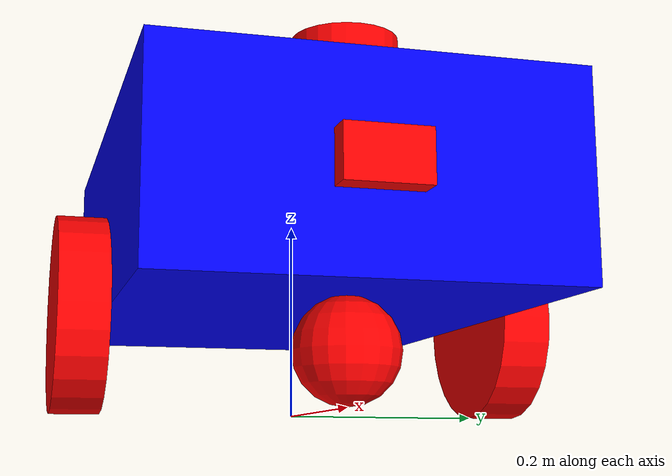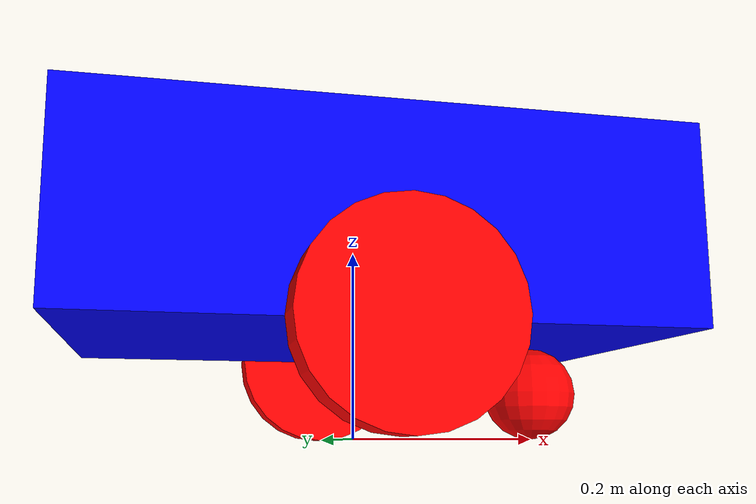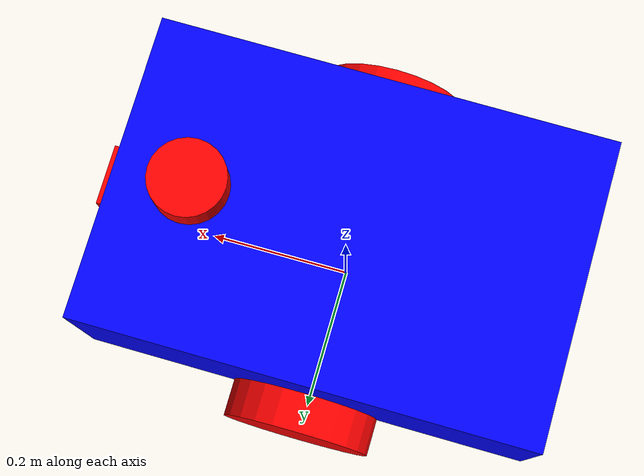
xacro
<?xml version="1.0"?>
<robot name="my_robot" xmlns:xacro="http://www.ros.org/wiki/xacro">

    <!-- ===============Properties========================= -->
    <xacro:property name="base_length" value = "0.6"/>
    <xacro:property name="base_width" value="0.4" />
    <xacro:property name="base_height" value="0.2" />
    <xacro:property name="wheel_radius" value="0.1" />
    <xacro:property name="wheel_height" value="0.05" />
    <xacro:property name="caster_wheel_radius" value="0.05" />

    <xacro:property name="lidar_radius" value="0.05"/>
    <xacro:property name="lidar_height" value="0.04"/>

    <xacro:property name="camera_length" value="0.05"/>
    <xacro:property name="camera_width" value="0.08"/>
    <xacro:property name="camera_height" value="0.05"/>

    <!-- ============Material Function=============== -->
    <material name="blue">
        <color rgba="0 0 1 1"/>
    </material>

    <material name="red">
        <color rgba="1 0 0 1" />
    </material>

    <!-- ================Inertia Functions=================== -->
    <xacro:macro name="box_inertia" params="mass length width height">
        <inertial>
            <origin xyz="0 0 0" rpy="0 0 0"/>
            <mass value="${mass}"/>
            <inertia
                ixx="${(1.0/12.0) * float(mass) * (float(width)*float(width) + float(height)*float(height))}"
                ixy="0.0"
                ixz="0.0"

                iyy="${(1.0/12.0) * float(mass) * (float(length)*float(length) + float(height)*float(height))}"
                iyz="0.0"

                izz="${(1.0/12.0) * float(mass) * (float(length)*float(length) + float(width)*float(width))}"/>
        </inertial>

    </xacro:macro>

    <xacro:macro name="cylinder_inertia" params="mass radius length">
        <inertial>
            <origin xyz="0 0 0" rpy="0 0 0"/>
            <mass value="${mass}"/>
            <inertia
                ixx="${(1.0/12.0) * mass * (3*radius*radius + length*length)}"
                ixy="0.0"
                ixz="0.0"
                iyy="${(1.0/12.0) * mass * (3*radius*radius + length*length)}"
                iyz="0.0"
                izz="${0.5 * mass * radius * radius}"/>
        </inertial>
    </xacro:macro>

    <xacro:macro name="sphere_inertia" params="mass radius">
        <inertial>
            <origin xyz="0 0 0" rpy="0 0 0"/>
            <mass value="${mass}"/>
            <inertia
                ixx="${(2.0/5.0) * float(mass) * float(radius) * float(radius)}"
                ixy="0.0"
                ixz="0.0"
                iyy="${(2.0/5.0) * float(mass) * float(radius) * float(radius)}"
                iyz="0.0"
                izz="${(2.0/5.0) * float(mass) * float(radius) * float(radius)}"/>
        </inertial>
    </xacro:macro>

<!-- ===================================LINKS============================================================= -->

    <!-- ================Base_footprint Link=================== -->

    <link name="base_footprint_link"/>

    <!-- ===============Base Link=================== -->

    <link name="base_link">
        <xacro:box_inertia mass="5.0" length="${base_length}" width="${base_width}" height="${base_height}"/>
        <visual>
            <origin xyz="0 0 ${base_height/2}" rpy="0 0 0"/>
            <geometry>
                <box size="${base_length} ${base_width} ${base_height}"/>
            </geometry>
            <material name="blue"/>
        </visual>
        <collision>
            <origin xyz="0 0 ${base_height/2}" rpy="0 0 0"/>
            <geometry>
                <box size="${base_length} ${base_width} ${base_height}"/>
            </geometry>
        </collision>
    </link>

    <link name="right_wheel_link">
        <visual>
            <origin xyz="0 0 0" rpy="1.5708 0 0" />
            <geometry>
                <cylinder radius="${wheel_radius}" length="${wheel_height}" />
            </geometry>
            <material name="red" />
        </visual>
        <collision>
            <origin xyz="0 0 0" rpy="1.5708 0 0" />
            <geometry>
                <cylinder radius="${wheel_radius}" length="${wheel_height}" />
            </geometry>
        </collision>
        <xacro:cylinder_inertia mass="2.0" radius="${wheel_radius}" length="${wheel_height}"/>
    </link>

    <link name="left_wheel_link">
        <visual>
            <origin xyz="0 0 0" rpy="1.5708 0 0" />
            <geometry>
                <cylinder radius="${wheel_radius}" length="${wheel_height}" />
            </geometry>
            <material name="red" />
        </visual>
        <collision>
            <origin xyz="0 0 0" rpy="1.5708 0 0" />
            <geometry>
                <cylinder radius="${wheel_radius}" length="${wheel_height}" />
            </geometry>
        </collision>
        <xacro:cylinder_inertia mass="2.0" radius="${wheel_radius}" length="${wheel_height}"/>
    </link>

    <link name="caster_wheel_link">
        <visual>
            <origin xyz="0 0 0" rpy="0 0 0" />
            <geometry>
                <sphere radius="${caster_wheel_radius}" />
            </geometry>
            <material name="red" />
        </visual>
        <collision>
            <origin xyz="0 0 0" rpy="0 0 0" />
            <geometry>
                <sphere radius="${caster_wheel_radius}" />
            </geometry>
        </collision>
        <xacro:sphere_inertia mass="1.0" radius="${caster_wheel_radius}"/>
    </link>

    <!-- ================Lidar Link======================= -->
    <link name="lidar_link">
        <visual>
            <origin xyz="0 0 0" rpy="0 0 0"/>
            <geometry>
                <cylinder radius="${lidar_radius}" length="${lidar_height}"/>
            </geometry>
            <material name="red"/>
        </visual>
        <collision>
            <origin xyz="0 0 0" rpy="0 0 0"/>
            <geometry>
                <cylinder radius="${lidar_radius}" length="${lidar_height}"/>
            </geometry>
        </collision>
        <xacro:cylinder_inertia
            mass="0.5"
            radius="${lidar_radius}"
            length="${lidar_height}"/>
    </link>

    <!-- ================Camera Link======================= -->
    <link name="camera_link">
        <visual>
            <origin xyz="0 0 0" rpy="0 0 0"/>
            <geometry>
                <box size="${camera_length} ${camera_width} ${camera_height}"/>
            </geometry>
            <material name="red"/>
        </visual>
        <collision>
            <origin xyz="0 0 0" rpy="0 0 0"/>
            <geometry>
                <box size="${camera_length} ${camera_width} ${camera_height}"/>
            </geometry>
        </collision>
        <xacro:box_inertia
            mass="0.3"
            length="${camera_length}"
            width="${camera_width}"
            height="${camera_height}"/>
    </link>

<!-- ==========================================JOINTS========================================================= -->
    <joint name="base_joint" type="fixed">
        <parent link="base_footprint_link"/>
        <child link="base_link"/>
        <origin xyz="0 0 ${base_height/2}" rpy="0 0 0"/>
    </joint>

    <joint name = "base_to_right_wheel_joint" type="continuous">
        <parent link="base_link"/>
        <child link="right_wheel_link"/>
        <origin xyz="0 ${-(base_width/2 + wheel_height/2)} 0" rpy="0 0 0"/>
        <axis xyz="0 1 0"/>
    </joint>

    <joint name = "base_to_left_wheel_joint" type="continuous">
        <parent link="base_link"/>
        <child link="left_wheel_link"/>
        <origin xyz="0 ${(base_width/2 + wheel_height/2)} 0" rpy="0 0 0"/>
        <axis xyz="0 1 0"/>
    </joint>

    <joint name = "base_to_caster_wheel_joint" type="fixed">
        <parent link="base_link"/>
        <child link="caster_wheel_link"/>
        <origin xyz="${base_length/3} 0 ${-caster_wheel_radius}" rpy="0 0 0"/>
    </joint>

    <joint name="base_to_lidar_joint" type="fixed">
        <parent link="base_link"/>
        <child link="lidar_link"/>
        <origin
            xyz="${base_length/3} 0 ${base_height + lidar_height/2}"
            rpy="0 0 0"/>
    </joint>

    <joint name="base_to_camera_joint" type="fixed">
        <parent link="base_link"/>
        <child link="camera_link"/>
        <origin
            xyz="${base_length/2} 0 ${base_height/2}" rpy="0 0 0"/>
    </joint>

    <!-- =====================Gazebo Plugins===================== -->
    <gazebo reference="base_link">
        <material>Gazebo/Blue</material>
    </gazebo>

    <gazebo reference="right_wheel_link">
        <material>Gazebo/Red</material>
        <mu1>10.0</mu1>
        <mu2>10.0</mu2>
        <kp>1000000.0</kp>
        <kd>1.0</kd>
    </gazebo>

    <gazebo reference="left_wheel_link">
        <material>Gazebo/Red</material>
        <mu1>10.0</mu1>
        <mu2>10.0</mu2>
        <kp>1000000.0</kp>
        <kd>1.0</kd>
    </gazebo>

    <gazebo reference="caster_wheel_link">
        <material>Gazebo/Black</material>
        <mu1>0.0</mu1>
        <mu2>0.0</mu2>
        <kp>1000000.0</kp>
        <kd>100.0</kd>
    </gazebo>

    <gazebo reference="lidar_link">
        <material>Gazebo/Grey</material>
    </gazebo>

    <gazebo reference="camera_link">
        <material>Gazebo/Black</material>
    </gazebo>

    <!-- =====================Lidar Sensor Plugin===================== -->
    <gazebo reference="lidar_link">
        <sensor name="lidar_sensor" type="ray">
            <pose>0 0 0 0 0 0</pose>
            <visualize>true</visualize>
            <update_rate>20</update_rate>
            <always_on>true</always_on>
            <ray>
                <scan>
                    <horizontal>
                        <samples>360</samples>
                        <resolution>1</resolution>
                        <min_angle>-3.14</min_angle>
                        <max_angle>3.14</max_angle>
                    </horizontal>
                </scan>

                <range>
                    <min>0.12</min>
                    <max>15.0</max>
                    <resolution>0.01</resolution>
                </range>
            </ray>

            <plugin
                name="gazebo_ros_laser_controller"
                filename="libgazebo_ros_ray_sensor.so">
                <ros>
                    <remapping>~/out:=scan</remapping>
                </ros>
                <output_type>sensor_msgs/LaserScan</output_type>
                <frame_name>lidar_link</frame_name>
            </plugin>
        </sensor>
    </gazebo>

    <!-- =====================Camera Sensor Plugin===================== -->
    <gazebo reference="camera_link">
        <sensor name="camera_sensor" type="camera">
            <pose>0 0 0 0 0 0</pose>
            <visualize>true</visualize>
            <update_rate>30</update_rate>
            <camera>
                <horizontal_fov>1.0472</horizontal_fov>
                <image>
                    <width>640</width>
                    <height>480</height>
                    <format>R8_G8_B8</format>
                </image>
                <clip>
                    <near>0.1</near>
                    <far>10.0</far>
                </clip>
            </camera>
            <plugin
                name="gazebo_ros_camera_controller"
                filename="libgazebo_ros_camera.so">
                <ros>
                    <remapping>~/out:=image_raw</remapping>
                </ros>
                <output_type>sensor_msgs/Image</output_type>
                <frame_name>camera_link</frame_name>
            </plugin>
        </sensor>
    </gazebo>

    <!-- ======================Diff Drive Controller Plugins====================== -->
    <gazebo>
        <plugin name="diff_drive_controller" filename="libgazebo_ros_diff_drive.so">
            <ros>
                <namespace>/</namespace>
            </ros>
            <update_rate>50</update_rate>

            <!-- wheels -->
            <left_joint>base_to_left_wheel_joint</left_joint>
            <right_joint>base_to_right_wheel_joint</right_joint>

            <!-- wheel separation -->
            <wheel_separation>${base_width + wheel_height}</wheel_separation>

            <!-- wheel diameter -->
            <wheel_diameter>${2 * wheel_radius}</wheel_diameter>

            <!-- frames -->
            <robot_base_frame>base_footprint_link</robot_base_frame>
            <odom_frame>odom</odom_frame>

            <!-- topics -->
            <command_topic>cmd_vel</command_topic>
            <odometry_topic>odom</odometry_topic>
            <publish_odom>true</publish_odom>
            <publish_odom_tf>true</publish_odom_tf>
            <publish_wheel_tf>true</publish_wheel_tf>

            <!-- max velocities -->
            <max_wheel_torque>20.0</max_wheel_torque>
            <max_wheel_acceleration>1.0</max_wheel_acceleration>
        </plugin>
    </gazebo>

</robot>
